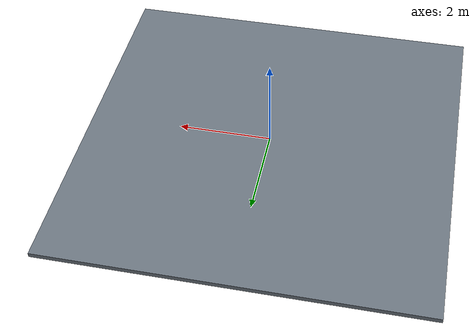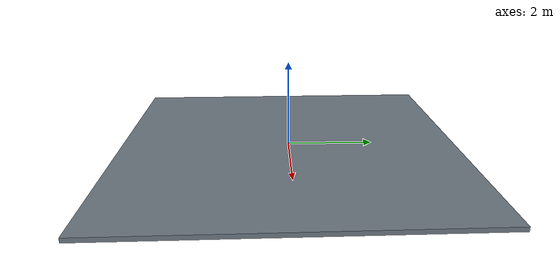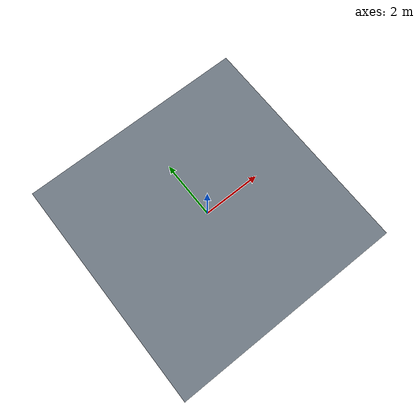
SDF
<?xml version="1.0"?>
<sdf version="1.9">
  <world name="arm_lab">
    <physics name="1ms" type="ignored">
      <max_step_size>0.001</max_step_size>
      <real_time_factor>1.0</real_time_factor>
    </physics>

    <plugin filename="gz-sim-physics-system" name="gz::sim::systems::Physics" />
    <plugin filename="gz-sim-user-commands-system" name="gz::sim::systems::UserCommands" />
    <plugin filename="gz-sim-scene-broadcaster-system" name="gz::sim::systems::SceneBroadcaster" />

    <scene>
      <ambient>0.45 0.45 0.45 1</ambient>
      <background>0.78 0.82 0.88 1</background>
      <shadows>true</shadows>
    </scene>

    <light name="sun" type="directional">
      <cast_shadows>true</cast_shadows>
      <pose>0 0 10 0 0 0</pose>
      <diffuse>0.9 0.9 0.9 1</diffuse>
      <specular>0.2 0.2 0.2 1</specular>
      <direction>-0.5 0.2 -0.8</direction>
    </light>

    <model name="ground_plane">
      <static>true</static>
      <link name="ground">
        <collision name="collision">
          <pose>0 0 -0.05 0 0 0</pose>
          <geometry><box><size>8 8 0.1</size></box></geometry>
          <surface>
            <friction>
              <ode><mu>1.0</mu><mu2>1.0</mu2></ode>
            </friction>
          </surface>
        </collision>
        <visual name="visual">
          <pose>0 0 -0.05 0 0 0</pose>
          <geometry><box><size>8 8 0.1</size></box></geometry>
          <material>
            <ambient>0.32 0.35 0.38 1</ambient>
            <diffuse>0.42 0.46 0.50 1</diffuse>
          </material>
        </visual>
      </link>
    </model>
  </world>
</sdf>
